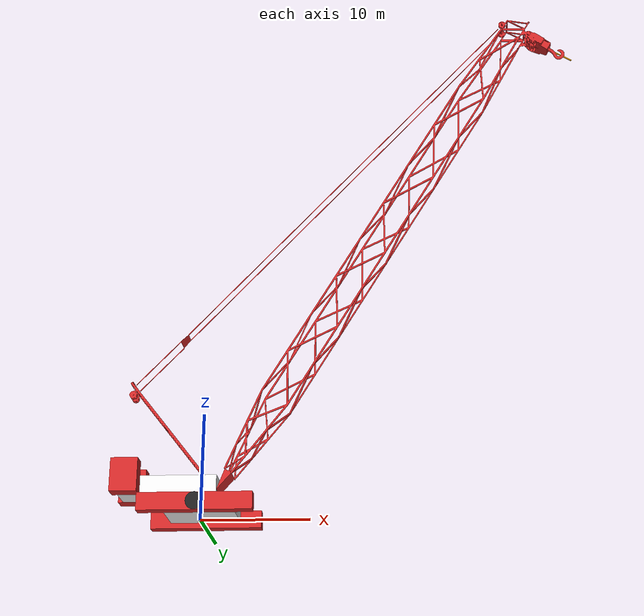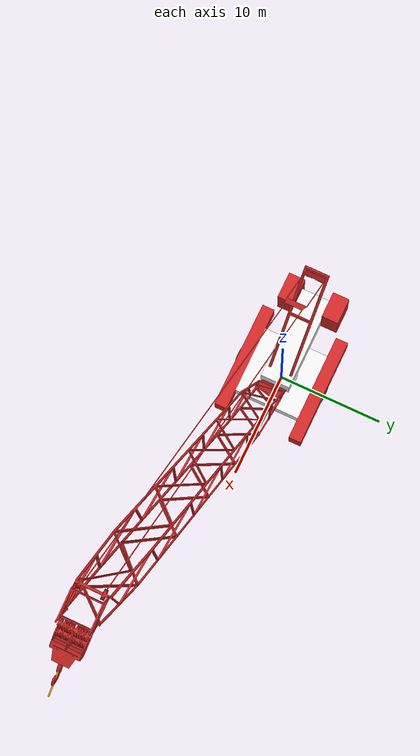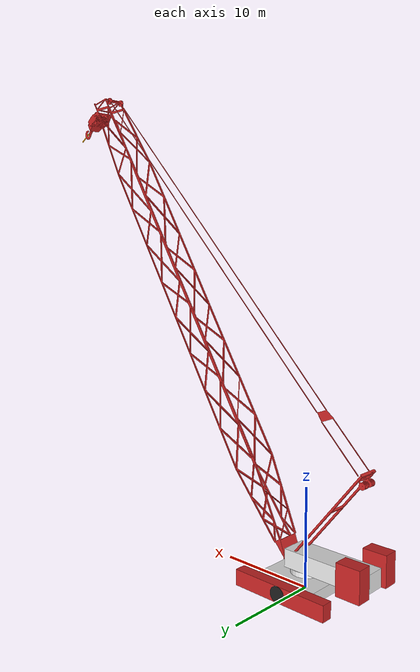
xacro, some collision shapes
<?xml version="1.0"?>
<robot name="crawler_crane" xmlns:xacro="http://www.ros.org/wiki/xacro">

  <!-- Included material Files -->
  <xacro:include filename="$(find crawler_crane_description)/urdf/materials.xacro" />
  <xacro:include filename="$(find crawler_crane_description)/urdf/crawler_crane.gazebo.urdf.xacro" />

  <!-- LR1400-2 -->
  <xacro:property name="scale" value="0.1" />
  <xacro:property name="crawlerM" value="27700000" />
  <xacro:property name="crawlerL" value="10.385" />
  <xacro:property name="crawlerW" value="1.2" />
  <xacro:property name="crawlerH" value="1.6" />
  <xacro:property name="chassisM" value="17500" />
  <xacro:property name="chassisL" value="6.5" />
  <xacro:property name="chassisW" value="6.3" />
  <xacro:property name="chassisH" value="1.1" />
  <xacro:property name="chassisOffsetGround" value="0.5" />
  <xacro:property name="slewingRingM" value="500" />
  <xacro:property name="slewingRingR" value="1.5" />
  <xacro:property name="slewingRingH" value="0.5" />
  <xacro:property name="centerWeightM" value="8000" />
  <xacro:property name="centerWeightL" value="3.1" />
  <xacro:property name="centerWeightW" value="3.1" />
  <xacro:property name="centerWeightH" value="1.1" />
  <xacro:property name="superStructureM" value="33000" />
  <xacro:property name="superStructureL" value="9.0" />
  <xacro:property name="superStructureW" value="2.8" />
  <xacro:property name="superStructureH" value="1.8" />
  <xacro:property name="counterWeightM" value="67.500" />
  <xacro:property name="counterWeightL" value="2.495" />
  <xacro:property name="counterWeightW" value="1.6" />
  <xacro:property name="counterWeightH" value="3.1" />
  <xacro:property name="superStructureOffsetX" value="-3.0" />
  <xacro:property name="jointSlewingZ" value="2.1" />
  <xacro:property name="jointLuffingX" value="1.5" />
  <xacro:property name="jointLuffingZ" value="2.59" />
  <xacro:property name="boomM" value="232.00" />
  <xacro:property name="boomL" value="56.0" />
  <xacro:property name="boomW" value="2.8" />
  <xacro:property name="boomH" value="2.4" />
  <xacro:property name="jointRopeRotatingZ" value="-1.66" />
  <xacro:property name="hookBlockM" value="15.00" />
  <xacro:property name="hookBlockH" value="2.34" />
  <xacro:property name="hookM" value="1.000" />
  <xacro:property name="hookH" value="1.77" />

  <xacro:property name="effort" value="1000000000000000000000000000" />

  <property name="M_PI" value="3.1415926535897931" />

  <!-- Macro for inertia matrix -->
  <xacro:macro name="sphere_inertial_matrix" params="m r">
      <inertial>
          <mass value="${m}" />
          <inertia ixx="${2*m*r*r/5}" ixy="0" ixz="0"
              iyy="${2*m*r*r/5}" iyz="0"
              izz="${2*m*r*r/5}" />
      </inertial>
  </xacro:macro>

  <xacro:macro name="cylinder_inertial_matrix" params="m r h">
      <inertial>
          <mass value="${m}" />
          <inertia ixx="${m*(3*r*r+h*h)/12}" ixy = "0" ixz = "0"
              iyy="${m*(3*r*r+h*h)/12}" iyz = "0"
              izz="${m*r*r/2}" />
      </inertial>
  </xacro:macro>

  <xacro:macro name="box_inertial_matrix" params="m l w h">
      <inertial>
          <mass value="${m}" />
          <inertia ixx="${m*(h*h+l*l)/12}" ixy = "0" ixz = "0"
              iyy="${m*(w*w+l*l)/12}" iyz = "0"
              izz="${m*(w*w+h*h)/12}" />
      </inertial>
  </xacro:macro>

  <!-- Macro for wheel joint -->
  <xacro:macro name="wheel" params="lr translateY"> <!-- lr: left, right -->
      <link name="wheel_${lr}_link">
          <visual>
              <origin xyz="0 0 0" rpy="${M_PI/2} 0  0 " />
              <geometry>
                  <cylinder length="${0.1*crawlerW}" radius="${0.5*crawlerH}" />
              </geometry>
              <material name="Black" />
          </visual>
          <collision>
              <origin xyz="0 0 0" rpy="${M_PI/2} 0 0 " />
              <geometry>
                  <cylinder length="${0.1*crawlerW}" radius="${0.5*crawlerH}" />
              </geometry>
          </collision>
          <cylinder_inertial_matrix  m="${scale*crawlerM}" r="${0.5*crawlerH}" h="${crawlerW}" />          <!-- the crawlerM is placed on the wheels -->
      </link>
      <gazebo reference="wheel_${lr}_link">
          <material>Gazebo/Black</material>
      </gazebo>
      <joint name="chassis_to_wheel_${lr}_joint" type="continuous">
          <parent link="bottom_link"/>
          <child link="wheel_${lr}_link"/>
          <origin xyz="0 ${translateY * (0.5*chassisW+crawlerW)} -0.25" rpy="0 0 0" />
          <axis xyz="0 1 0" rpy="0 0 0" />
      </joint>
      <!-- Transmission is important to link the joints and the controller -->
      <transmission name="wheel_${lr}_joint_trans">
          <type>transmission_interface/SimpleTransmission</type>
          <joint name="chassis_to_wheel_${lr}_joint" />
          <actuator name="wheel_${lr}_joint_motor">
              <hardwareInterface>EffortJointInterface</hardwareInterface>
              <mechanicalReduction>1</mechanicalReduction>
          </actuator>
      </transmission>
  </xacro:macro>

  <!-- Macro for counterWeight joint -->
  <xacro:macro name="counterWeight" params="lr directY"> <!-- lr: left, right -->
      <link name="counterWeight_${lr}_link">
          <visual>
              <origin xyz="0 0 ${0.5*counterWeightH}" rpy="0 0  0" />
              <geometry>
                  <box size="${counterWeightL} ${counterWeightW} ${counterWeightH}" />
              </geometry>
              <material name="red" />
          </visual>
          <collision>
              <origin xyz="0 0 ${0.5*counterWeightH}" rpy="0 0 0" />
              <geometry>
                  <box size="${counterWeightL} ${counterWeightW} ${counterWeightH}" />
              </geometry>
          </collision>
          <box_inertial_matrix  m="${scale*counterWeightM}" l="${counterWeightL}" w="${counterWeightW}" h="${counterWeightH}"/>
      </link>

      <gazebo reference="counterWeight_${lr}_link">
          <material>Gazebo/Red</material>
      </gazebo>

      <joint name="superStructure_to_counterWeight_${lr}_joint" type="fixed">
          <parent link="superStructure_link"/>
          <child link="counterWeight_${lr}_link"/>
          <origin xyz="${-0.75*superStructureL} ${directY * (superStructureW+counterWeightW)/2} 0" rpy="0 0 0" />
      </joint>
  </xacro:macro>

  <xacro:macro name="rope_revolute" params="parent name mimic color *origin">
    <joint name="${name}_joint" type="revolute">
      <insert_block name="origin" />
      <axis xyz="0 -1 0" />
      <limit effort="${effort}" velocity="1.57"  lower="${-M_PI}" upper="${M_PI}" />
      <mimic joint="${mimic}" multiplier="-1.0" offset="0" />
      <parent link="${parent}" />
      <child link="${name}_link" />
    </joint>

    <link name="${name}_link" >
      <box_inertial_matrix  m="${scale*100*hookBlockM}" l="0.1" w="0.1" h="50"/>    <!--hookBlock Mass is placed here -->
      <visual>
          <origin xyz="0 0 -2.5" rpy="0 0 0" />
          <geometry>
              <box size="0.1 0.1 5" />
          </geometry>
      </visual>
    </link>
  </xacro:macro>

  <xacro:macro name="rope_prismatic" params="parent name vlimit llimit ulimit size color *origin mesh_name mass">
    <joint name="${name}_joint" type="prismatic">
      <insert_block name="origin" />
      <axis xyz="0 0 -1" />
      <limit effort="${effort}" velocity="${vlimit}"  lower="${llimit}" upper="${ulimit}" />
      <parent link="${parent}" />
      <child link="${name}_link" />
    </joint>
    <link name="${name}_link" >
      <box_inertial_matrix  m="${scale*mass}" w="${size}" h="${size}" l="${size}" />

      <visual>
        <origin xyz="0 0 0" rpy="0 0 0" />
        <geometry>
          <mesh filename="package://crawler_crane_description/meshes/${mesh_name}" />
        </geometry>
        <material name="${color}"/>
      </visual>
      <collision>
        <origin xyz="0 0 ${0.5*size}" rpy="0 0 0" />
        <geometry>
          <box size="${size} ${size} ${size}" />
        </geometry>
      </collision>
    </link>
  </xacro:macro>

  <xacro:macro name="Z_revolute" params="parent name vlimit llimit ulimit size_x size_y size_z col_offset_x color *origin mesh_name mass">
    <joint name="${name}_joint" type="revolute">
      <insert_block name="origin" />
      <axis xyz="0 0 1" />
      <limit effort="${effort}" velocity="${vlimit}" lower="${llimit}" upper="${ulimit}" />
      <parent link="${parent}" />
      <child link="${name}_link" />
    </joint>

    <link name="${name}_link" >
      <box_inertial_matrix  m="${scale*mass}" w="${size_y}" h="${size_z}" l="${size_x}" />

      <visual>
        <origin xyz="0 0 0" rpy="0 0 0" />
        <geometry>
          <mesh filename="package://crawler_crane_description/meshes/${mesh_name}" />
        </geometry>
        <material name="${color}"/>
      </visual>
      <collision>
        <origin xyz="${col_offset_x} 0 ${0.5*size_z}" rpy="0 0 0" />
        <geometry>
          <box size="${size_x} ${size_y} ${size_z}" />
        </geometry>
      </collision>
    </link>
  </xacro:macro>

  <!-- BASE-FOOTPRINT -->
  <!-- base_footprint is a fictitious link(frame) that is on the ground right below base_link origin -->
  <link name="base_footprint">

      <visual>
          <origin xyz="0 0 0" rpy="0 0 0" />
          <geometry>
              <box size="0.001 0.001 0.001" />
          </geometry>
      </visual>
  </link>
  <gazebo reference="base_footprint">
      <material>Gazebo/Blue</material>
  </gazebo>

  <joint name="base_footprint_joint" type="fixed">
      <origin xyz="0 0 ${0.5*chassisH+chassisOffsetGround}" rpy="0 0 0" />
      <parent link="base_footprint"/>
      <child link="bottom_link" />
  </joint>

  <!-- BOTTOM-->
  <link name="bottom_link">
      <box_inertial_matrix  m="${scale*chassisM}" l="${chassisL}" w="${chassisW}" h="${chassisH}" />    <!-- the crawlerM is placed on the wheels -->
      <visual>
          <origin xyz="0 0 0" rpy="0 0 0" />
          <geometry>
              <box size="${chassisL} ${chassisW} ${chassisH}"/>
          </geometry>
          <material name="White" />
      </visual>
      <collision>
          <origin xyz="0 0 0" rpy="0 0 0 " />
          <geometry>
              <box size="${chassisL} ${chassisW} ${chassisH}"/>
          </geometry>
      </collision>
      <!-- L-crawler -->
      <visual>
          <origin xyz="0 ${(chassisW+crawlerW)/2} ${-0.5*chassisOffsetGround}" rpy="0 0 0" />
          <geometry>
              <box size="${crawlerL} ${crawlerW} ${crawlerH}" />
          </geometry>
          <material name="red" />
      </visual>
      <collision>
          <origin xyz="0 ${(chassisW+crawlerW)/2} ${-0.5*chassisOffsetGround}" rpy="0 0 0" />
          <geometry>
              <box size="${crawlerL} ${crawlerW} ${crawlerH}" />
          </geometry>
      </collision>
      <!-- R-crawler -->
      <visual>
          <origin xyz="0 ${-1*(chassisW+crawlerW)/2} ${-0.5*chassisOffsetGround}" rpy="0 0 0" />
          <geometry>
              <box size="${crawlerL} ${crawlerW} ${crawlerH}" />
          </geometry>
          <material name="red" />
      </visual>
      <collision>
          <origin xyz="0 ${-1*(chassisW+crawlerW)/2} ${-0.5*chassisOffsetGround}" rpy="0 0 0" />
          <geometry>
              <box size="${crawlerL} ${crawlerW} ${crawlerH}" />
          </geometry>
      </collision>
      <!-- slewingRing -->
      <visual>
          <origin xyz="0 0 ${0.5*chassisH+0.5*slewingRingH}" rpy="0 0 0" />
          <geometry>
              <cylinder length="${slewingRingH}" radius="${slewingRingR}" />
          </geometry>
          <material name="White" />
      </visual>
      <collision>
          <origin xyz="0 0 ${0.5*chassisH+0.5*slewingRingH}" rpy="0 0 0" />
          <geometry>
              <cylinder length="${slewingRingH}" radius="${slewingRingR}" />
          </geometry>
      </collision>
  </link>
  <!-- Wheel Definitions -->
  <wheel lr="right"  translateY="1" />
  <wheel lr="left"  translateY="-1" />

  <!-- superStructure Definitions -->
  <joint name="superStructure_joint" type="continuous">
      <origin xyz="0 0 ${0.5*chassisH+slewingRingH}" rpy="0 0 0" />             <!-- on the top of slewingRing -->
      <axis xyz="0 0 1" rpy="0 0 0" />
      <limit effort="${effort}" velocity="${M_PI / 2.0}"/>
      <parent link="bottom_link"/>
      <child link="superStructure_link" />
  </joint>
  <link name="superStructure_link">
      <box_inertial_matrix  m="${scale*superStructureM}" l="${superStructureL}" w="${superStructureW}" h="${superStructureH}" />
      <visual>
          <origin xyz="${superStructureOffsetX} 0 ${0.5*superStructureH}" rpy="0 0 0" />
          <geometry>
              <box size="${superStructureL} ${superStructureW} ${superStructureH}"/>
          </geometry>
          <material name="White" />
      </visual>
      <collision>
          <origin xyz="${superStructureOffsetX} 0 ${0.5*superStructureH}" rpy="0 0 0 " />
          <geometry>
              <box size="${superStructureL} ${superStructureW} ${superStructureH}"/>
          </geometry>
      </collision>
  </link>
  <!-- counterWeight Definitions -->
  <counterWeight lr="right"  directY="1" />
  <counterWeight lr="left"  directY="-1" />

  <!-- luffing: boom joint -->
  <joint name="boom_joint" type="revolute">
      <origin xyz="${jointLuffingX} 0 ${jointLuffingZ-crawlerH-slewingRingH}" rpy="0 0 0" />
      <axis xyz="0 -1 0" />
      <limit effort="${effort}" velocity="1.57" lower="0.6" upper="${0.463*M_PI}" />
      <parent link="superStructure_link" />
      <child link="boom_link" />
  </joint>
  <link name="boom_link" >
      <box_inertial_matrix  m="${boomM}" w="${boomW}" h="${boomH}" l="${boomL}" />
      <visual>
        <plugin name="some_visual_plugin" filename="libsome_visual_plugin.so"/>
        <origin xyz="0 0 0" rpy="0 0 0" />
        <geometry>
          <mesh filename="package://crawler_crane_description/meshes/boom.dae" />
        </geometry>
        <material name="red"/>
      </visual>
      <collision>
        <origin xyz="${0.5*boomL} 0 0" rpy="0 0 0" />
        <geometry>
          <box size="${boomL} ${boomW} ${boomH}" />
        </geometry>
      </collision>
  </link>

  <!-- maintain rope erect: rope joint -->
  <rope_revolute parent="boom_link" name="rope" mimic="boom_joint" color="green">
      <origin xyz="${boomL} 0 ${jointRopeRotatingZ}" rpy="0 0 0"/>
  </rope_revolute>

  <!-- lifting: hook_block joint -->
  <rope_prismatic parent="rope_link" name="hook_block" vlimit="2.0" llimit="0" ulimit="${1.5*boomL}" size="${hookBlockH}" color="red"  mesh_name="hookblock.dae" mass="${0.02*hookBlockM}">
      <origin xyz="0 0 0" rpy="0 0 0"/>
  </rope_prismatic>

  <!-- hook rotating: hook joint -->
  <Z_revolute parent="hook_block_link" name="hook" vlimit="1.57" llimit="${-M_PI}" ulimit="${M_PI}" size_x="${hookH}" size_y="2" size_z="${hookH}" col_offset_x="0" color="red"  mesh_name="hook.dae" mass="${0.01*hookM}">
      <origin xyz="0 0 ${-hookBlockH-hookH}" rpy="0 0 0" />
  </Z_revolute>

  <upper_transmission />
  <crane_control_plugins />
  <laser_plugins parent="superStructure_link" x="${0.5*superStructureL}" y="${0.6*superStructureW}" z="${5*superStructureH}" />

</robot>

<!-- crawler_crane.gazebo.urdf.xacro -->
<robot name="crawler_crane" xmlns:xacro="http://www.ros.org/wiki/xacro">

  <xacro:include filename="$(find velodyne_description)/urdf/HDL-32E.urdf.xacro"/>

  <!-- transmision of joints -->
  <xacro:macro name="transmission_block" params="joint_name">
    <transmission name="tran1">
      <type>transmission_interface/SimpleTransmission</type>
      <joint name="${joint_name}">
        <hardwareInterface>PositionJointInterface</hardwareInterface>
        <hardwareInterface>VelocityJointInterface</hardwareInterface>
        <hardwareInterface>EffortJointInterface</hardwareInterface>
      </joint>
      <actuator name="motor1">
        <hardwareInterface>VelocityJointInterface</hardwareInterface>
        <mechanicalReduction>1</mechanicalReduction>
      </actuator>
    </transmission>
  </xacro:macro>

  <xacro:macro name="upper_transmission">
    <xacro:transmission_block joint_name="superStructure_joint"/>
    <xacro:transmission_block joint_name="boom_joint"/>
    <xacro:transmission_block joint_name="rope_joint"/>
    <xacro:transmission_block joint_name="hook_block_joint"/>
    <xacro:transmission_block joint_name="hook_joint"/>
  </xacro:macro>

  <!-- controllers plugins -->
  <xacro:macro name="crane_control_plugins">
    <gazebo>
        <!-- Differential drive controller  -->
        <plugin name="differential_drive_controller" filename="libgazebo_ros_diff_drive.so">
            <rosDebugLevel>Debug</rosDebugLevel>
            <publishWheelTF>true</publishWheelTF>
            <robotNamespace>/</robotNamespace>
            <publishTf>1</publishTf>
            <publishWheelJointState>true</publishWheelJointState>
            <alwaysOn>true</alwaysOn>
            <legacyMode>true</legacyMode>
            <updateRate>100.0</updateRate>
            <leftJoint>chassis_to_wheel_left_joint</leftJoint>
            <rightJoint>chassis_to_wheel_right_joint</rightJoint>
            <wheelSeparation>${(0.5*chassisW+crawlerW)}</wheelSeparation>
            <wheelDiameter>${crawlerH}</wheelDiameter>
            <broadcastTF>1</broadcastTF>
            <wheelTorque>30000000000000000000000000000000000000000</wheelTorque>
            <wheelAcceleration>1.8</wheelAcceleration>
            <commandTopic>cmd_vel</commandTopic>
            <odometryFrame>odom</odometryFrame>
            <odometryTopic>odom</odometryTopic>
            <publishOdomTF>1</publishOdomTF>
            <odometrySource>1</odometrySource>
            <robotBaseFrame>base_footprint</robotBaseFrame>
        </plugin>

        <!-- ros_control plugin -->
        <plugin name="gazebo_ros_control" filename="libgazebo_ros_control.so">
            <robotNamespace>/</robotNamespace>
        </plugin>

        <!-- gazebo_mimic_joint plugin -->
        <plugin name="gazebo_mimic_joint" filename="libroboticsgroup_gazebo_mimic_joint_plugin.so">
            <rosDebugLevel>Debug</rosDebugLevel>
            <robotNamespace>/</robotNamespace>
            <joint>boom_joint</joint>
            <mimicJoint>rope_joint</mimicJoint>
            <multiplier>-1</multiplier>
            <maxEffort>${effort}</maxEffort>
        </plugin>
    </gazebo>
  </xacro:macro>

  <!-- velodyne laser -->
  <xacro:macro name="laser_plugins" params="parent x y z">
    <HDL-32E parent="${parent}" name="velodyne2" topic="/velodyne_points2" hz="10" samples="220">
        <origin xyz="${x} ${y} ${z}" rpy="0 0 0" />
    </HDL-32E>
  </xacro:macro>

</robot>

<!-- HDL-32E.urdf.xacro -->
<robot xmlns:xacro="http://www.ros.org/wiki/xacro" name="HDL-32E">
  <xacro:property name="M_PI" value="3.1415926535897931" />
  <xacro:macro name="HDL-32E" params="*origin parent:=base_link name:=velodyne tf_prefix:='' topic:=/velodyne_points organize_cloud:=false hz:=10 lasers:=32 samples:=2187 collision_range:=0.3 min_range:=0.9 max_range:=130.0 noise:=0.008 min_angle:=-${M_PI} max_angle:=${M_PI} gpu:=false">

    <joint name="${name}_base_mount_joint" type="fixed">
      <xacro:insert_block name="origin" />
      <parent link="${parent}"/>
      <child link="${name}_base_link"/>
    </joint>

    <link name="${name}_base_link">
      <inertial>
        <mass value="1.0"/>
        <origin xyz="0 0 0.07212"/>
        <inertia ixx="${(1.0 * (3.0*0.04267*0.04267 + 0.14424*0.14424)) / 12.0}" ixy="0" ixz="0"
          iyy="${(1.0 * (3.0*0.04267*0.04267 + 0.14424*0.14424)) / 12.0}" iyz="0"
          izz="${0.5 * 1.0 * (0.04267*0.04267)}"/>
      </inertial>
      <visual>
        <geometry>
          <mesh filename="package://velodyne_description/meshes/HDL32E_base.dae" />
        </geometry>
      </visual>
      <collision>
        <origin rpy="0 0 0" xyz="0 0 0.07212"/>
        <geometry>
          <cylinder radius="0.04267" length="0.14424"/>
        </geometry>
      </collision>
    </link>

    <joint name="${name}_base_scan_joint" type="fixed" >
      <origin xyz="0 0 0.09081" rpy="0 0 0" />
      <parent link="${name}_base_link" />
      <child link="${name}"/>
    </joint>

    <link name="${name}">
      <inertial>
        <mass value="0.01"/>
        <origin xyz="0 0 0"/>
        <inertia ixx="1e-7" ixy="0" ixz="0" iyy="1e-7" iyz="0" izz="1e-7"/>
      </inertial>
      <visual>
        <origin xyz="0 0 -0.09081" rpy="0 0 0" />
        <geometry>
          <mesh filename="package://velodyne_description/meshes/HDL32E_scan.dae" />
        </geometry>
      </visual>
      <collision>
        <geometry>
          <sphere radius="0"/>
        </geometry>
      </collision>
    </link>

    <!-- Gazebo requires the velodyne_gazebo_plugins package -->
    <gazebo reference="${name}">
      <xacro:if value="${gpu}">
        <sensor type="gpu_ray" name="${name}-HDL32E">
          <pose>0 0 0 0 0 0</pose>
          <visualize>false</visualize>
          <update_rate>${hz}</update_rate>
          <ray>
            <scan>
              <horizontal>
                <samples>${samples}</samples>
                <resolution>1</resolution>
                <min_angle>${min_angle}</min_angle>
                <max_angle>${max_angle}</max_angle>
              </horizontal>
              <vertical>
                <samples>${lasers}</samples>
                <resolution>1</resolution>
                <min_angle>-${5.0*M_PI/180.0}</min_angle>
                <max_angle> ${85.0*M_PI/180.0}</max_angle>
              </vertical>
            </scan>
            <range>
              <min>${collision_range}</min>
              <max>${max_range+1}</max>
              <resolution>0.001</resolution>
            </range>
            <noise>
              <type>gaussian</type>
              <mean>0.0</mean>
              <stddev>0.0</stddev>
            </noise>
          </ray>
          <plugin name="gazebo_ros_laser_controller" filename="libgazebo_ros_velodyne_laser.so">
            <ros>
              <namespace>/${name}</namespace>
              <remapping>~/out:=${topic}</remapping>
            </ros>
            <tf_prefix>${tf_prefix}</tf_prefix>
            <frame_name>${name}</frame_name>
            <organize_cloud>${organize_cloud}</organize_cloud>
            <min_range>${min_range}</min_range>
            <max_range>${max_range}</max_range>
            <gaussian_noise>${noise}</gaussian_noise>
          </plugin>
        </sensor>
      </xacro:if>
      <xacro:unless value="${gpu}">
        <sensor type="ray" name="${name}-HDL32E">
          <pose>0 0 0 0 0 0</pose>
          <visualize>false</visualize>
          <update_rate>${hz}</update_rate>
          <ray>
            <scan>
              <horizontal>
                <samples>${samples}</samples>
                <resolution>1</resolution>
                <min_angle>${min_angle}</min_angle>
                <max_angle>${max_angle}</max_angle>
              </horizontal>
              <vertical>
                <samples>${lasers}</samples>
                <resolution>1</resolution>
                <min_angle>-${5.0*M_PI/180.0}</min_angle>
                <max_angle> ${85.0*M_PI/180.0}</max_angle>
              </vertical>
            </scan>
            <range>
              <min>${collision_range}</min>
              <max>${max_range+1}</max>
              <resolution>0.001</resolution>
            </range>
            <noise>
              <type>gaussian</type>
              <mean>0.0</mean>
              <stddev>0.0</stddev>
            </noise>
          </ray>
          <plugin name="gazebo_ros_laser_controller" filename="libgazebo_ros_velodyne_laser.so">
            <ros>
              <namespace>/${name}</namespace>
              <remapping>~/out:=${topic}</remapping>
            </ros>
            <tf_prefix>${tf_prefix}</tf_prefix>
            <frame_name>${name}</frame_name>
            <organize_cloud>${organize_cloud}</organize_cloud>
            <min_range>${min_range}</min_range>
            <max_range>${max_range}</max_range>
            <gaussian_noise>${noise}</gaussian_noise>
          </plugin>
        </sensor>
      </xacro:unless>
    </gazebo>

  </xacro:macro>
</robot>
